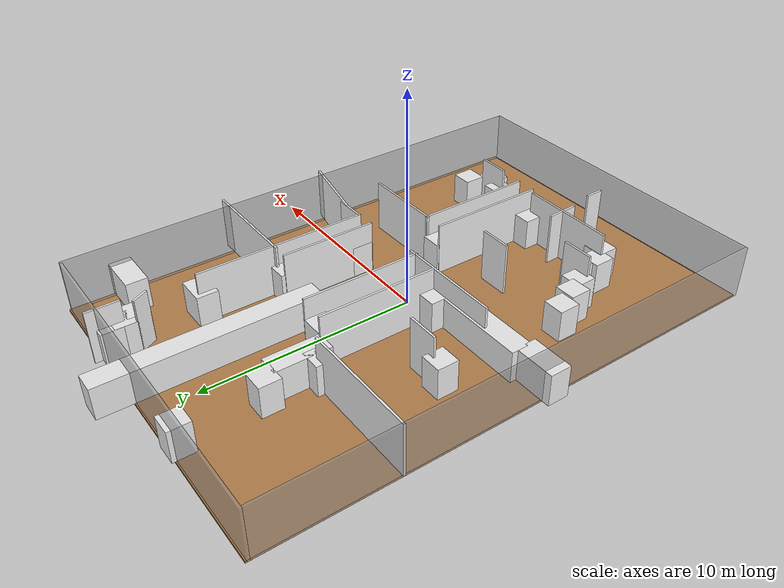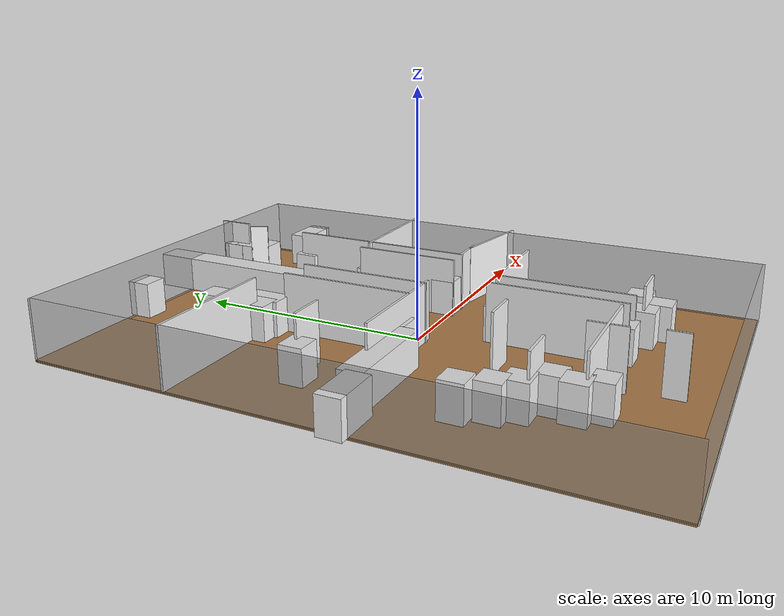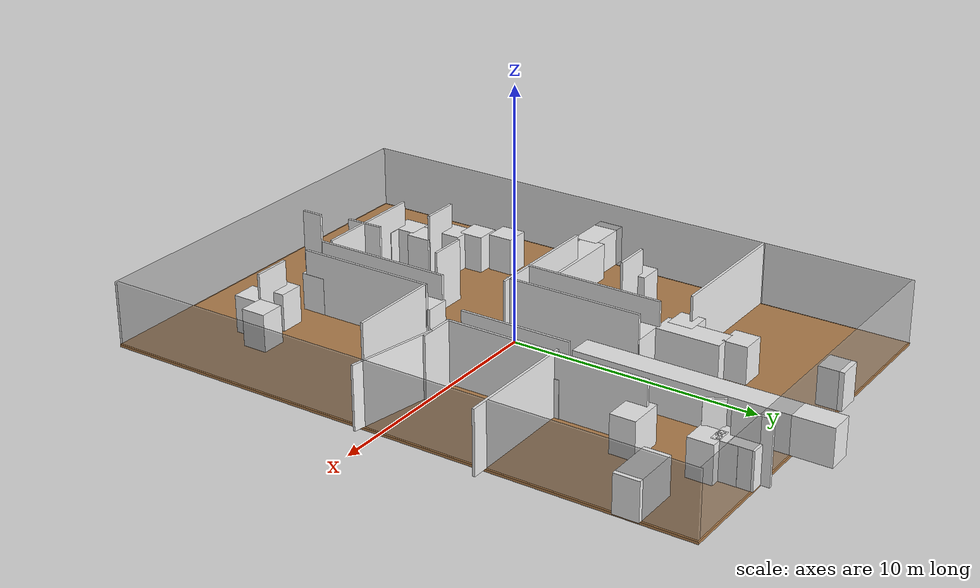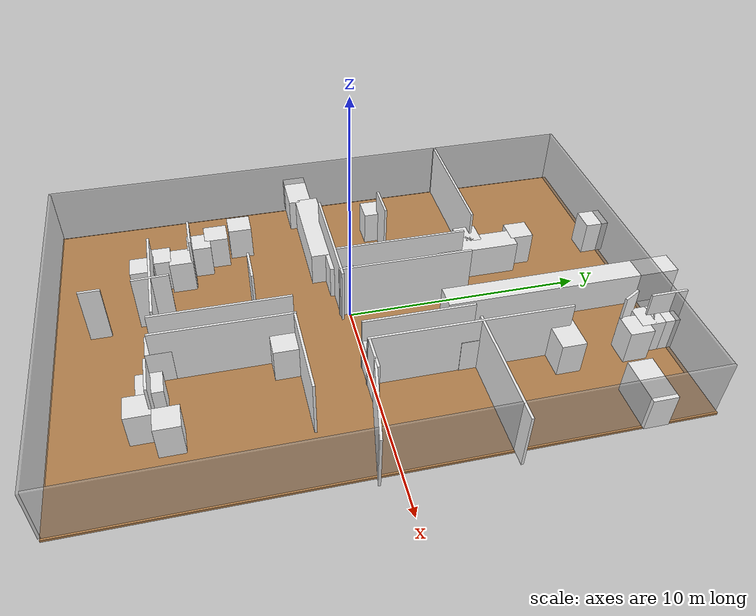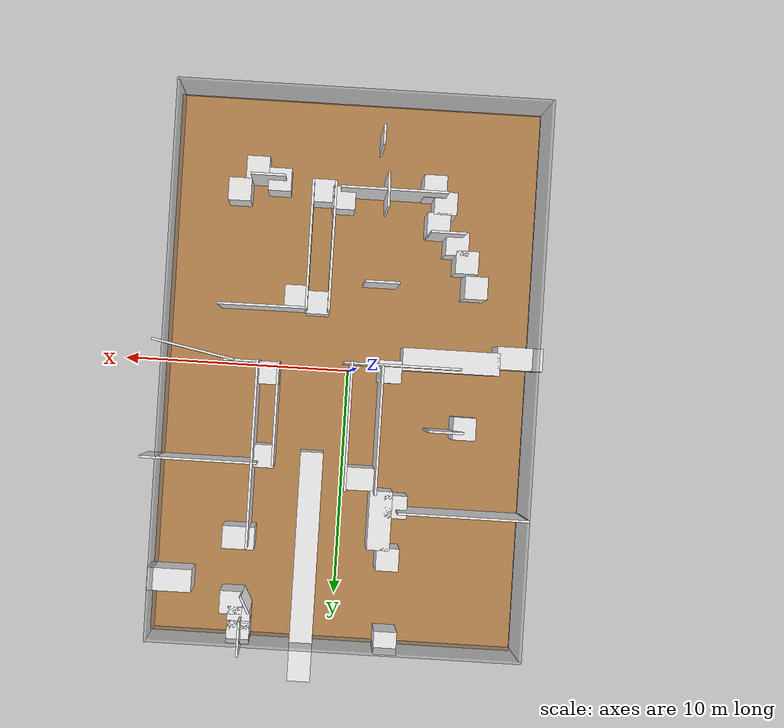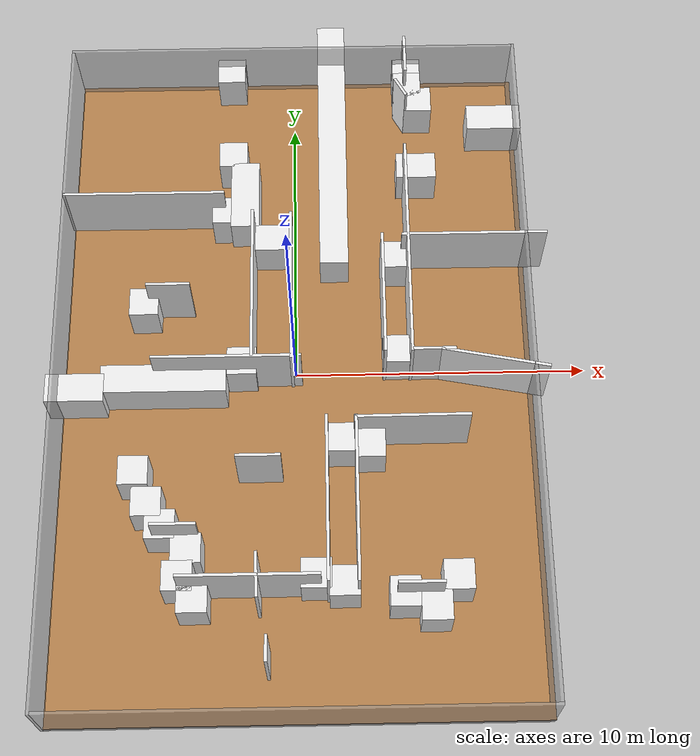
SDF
<sdf version="1.6">
 <world name="default">
  <light name="sun" type="directional">
   <pose>0 0 10 0 -0 0</pose>
   <diffuse>0.8 0.8 0.8 1</diffuse>
   <specular>0.2 0.2 0.2 1</specular>
   <attenuation>
    <range>1000</range>
    <constant>0.9</constant>
    <linear>0.01</linear>
    <quadratic>0.001</quadratic>
   </attenuation>
   <direction>-0.5 0.1 -0.9</direction>
  </light>
  <physics name="default_physics" default="0" type="ode">
   <real_time_update_rate>1000</real_time_update_rate>
   <max_step_size>0.001</max_step_size>
   <real_time_factor>1</real_time_factor>
   <ode>
    <solver>
     <type>quick</type>
     <iters>150</iters>
     <precon_iters>0</precon_iters>
     <sor>1.4</sor>
     <use_dynamic_moi_rescaling>1</use_dynamic_moi_rescaling>
    </solver>
    <constraints>
     <cfm>1e-05</cfm>
     <erp>0.2</erp>
     <contact_max_correcting_vel>2000</contact_max_correcting_vel>
     <contact_surface_layer>0.01</contact_surface_layer>
    </constraints>
   </ode>
  </physics>
  <model name="box_1">
   <pose>0.05 -12.05 1.25 0 -0 0</pose>
   <static>1</static>
   <link name="link">
    <collision name="collision"><geometry><box><size>16.1 0.1 2.5</size></box></geometry></collision>
    <visual name="visual">
     <geometry><box><size>16.1 0.1 2.5</size></box></geometry>
     <material>
      <script><name>Gazebo/GreyTransparent</name><uri>file://media/materials/scripts/gazebo.material</uri></script>
     </material>
    </visual>
   </link>
  </model>
  <model name="box_2">
   <pose>8.05 0.05 1.25 0 -0 0</pose>
   <static>1</static>
   <link name="link">
    <collision name="collision"><geometry><box><size>0.1 24.1 2.5</size></box></geometry></collision>
    <visual name="visual">
     <geometry><box><size>0.1 24.1 2.5</size></box></geometry>
     <material>
      <script><name>Gazebo/GreyTransparent</name><uri>file://media/materials/scripts/gazebo.material</uri></script>
     </material>
    </visual>
   </link>
  </model>
  <model name="box_3">
   <pose>-0.05 12.05 1.25 0 -0 0</pose>
   <static>1</static>
   <link name="link">
    <collision name="collision"><geometry><box><size>16.1 0.1 2.5</size></box></geometry></collision>
    <visual name="visual">
     <geometry><box><size>16.1 0.1 2.5</size></box></geometry>
     <material>
      <script><name>Gazebo/GreyTransparent</name><uri>file://media/materials/scripts/gazebo.material</uri></script>
     </material>
    </visual>
   </link>
  </model>
  <model name="box_4">
   <pose>-8.05 -0.05 1.25 0 -0 0</pose>
   <static>1</static>
   <link name="link">
    <collision name="collision"><geometry><box><size>0.1 24.1 2.5</size></box></geometry></collision>
    <visual name="visual">
     <geometry><box><size>0.1 24.1 2.5</size></box></geometry>
     <material>
      <script><name>Gazebo/GreyTransparent</name><uri>file://media/materials/scripts/gazebo.material</uri></script>
     </material>
    </visual>
   </link>
  </model>
  <model name="box_5">
   <pose>0.075723 0.05653 -0.05 0 -0 0</pose>
   <static>1</static>
   <link name="link">
    <collision name="collision"><geometry><box><size>16.2 24.2 0.1</size></box></geometry></collision>
    <visual name="visual">
     <geometry><box><size>16.2 24.2 0.1</size></box></geometry>
     <material>
      <script><name>Gazebo/WoodFloor</name><uri>file://media/materials/scripts/gazebo.material</uri></script>
     </material>
    </visual>
   </link>
  </model>
  <gravity>0 0 -9.8066</gravity>
  <magnetic_field>6e-06 2.3e-05 -4.2e-05</magnetic_field>
  <atmosphere type="adiabatic"/>
  <scene><ambient>0.4 0.4 0.4 1</ambient><background>0.7 0.7 0.7 1</background><shadows>1</shadows></scene>
  <spherical_coordinates>
   <surface_model>EARTH_WGS84</surface_model>
   <latitude_deg>0</latitude_deg>
   <longitude_deg>0</longitude_deg>
   <elevation>0</elevation>
   <heading_deg>0</heading_deg>
  </spherical_coordinates>
  <model name="box_8_clone">
   <pose>6.73576 -0.524414 1.25 0 0 -0.191358</pose>
   <static>1</static>
   <link name="link">
    <collision name="collision"><geometry><box><size>3.67087 0.1 2.5</size></box></geometry></collision>
    <visual name="visual">
     <geometry><box><size>3.67087 0.1 2.5</size></box></geometry>
     <material>
      <script><name>Gazebo/White</name><uri>file://media/materials/scripts/gazebo.material</uri></script>
     </material>
    </visual>
   </link>
  </model>
  <model name="box_9_clone_clone_0">
   <pose>-3.31581 -8.28424 0.75 0 -0 0</pose>
   <static>1</static>
   <link name="link">
    <collision name="collision"><geometry><box><size>1 1 1.5</size></box></geometry></collision>
    <visual name="visual">
     <geometry><box><size>1 1 1.5</size></box></geometry>
     <material>
      <script><name>Gazebo/White</name><uri>file://media/materials/scripts/gazebo.material</uri></script>
     </material>
    </visual>
   </link>
  </model>
  <model name="box_9_clone_clone_1">
   <pose>-3.8133 -7.56359 0.75 0 -0 0</pose>
   <static>1</static>
   <link name="link">
    <collision name="collision"><geometry><box><size>1 1 1.5</size></box></geometry></collision>
    <visual name="visual">
     <geometry><box><size>1 1 1.5</size></box></geometry>
     <material>
      <script><name>Gazebo/White</name><uri>file://media/materials/scripts/gazebo.material</uri></script>
     </material>
    </visual>
   </link>
  </model>
  <model name="box_9_clone_clone_2">
   <pose>-3.5544 -6.64819 0.75 0 -0 0</pose>
   <static>1</static>
   <link name="link">
    <collision name="collision"><geometry><box><size>1 1 1.5</size></box></geometry></collision>
    <visual name="visual">
     <geometry><box><size>1 1 1.5</size></box></geometry>
     <material>
      <script><name>Gazebo/White</name><uri>file://media/materials/scripts/gazebo.material</uri></script>
     </material>
    </visual>
   </link>
  </model>
  <model name="box_9_clone_clone_3">
   <pose>4.47982 -8.64867 0.75 0 -0 0</pose>
   <static>1</static>
   <link name="link">
    <collision name="collision"><geometry><box><size>1 1 1.5</size></box></geometry></collision>
    <visual name="visual">
     <geometry><box><size>1 1 1.5</size></box></geometry>
     <material>
      <script><name>Gazebo/White</name><uri>file://media/materials/scripts/gazebo.material</uri></script>
     </material>
    </visual>
   </link>
  </model>
  <model name="box_9_clone_clone_4">
   <pose>5.22128 -7.66224 0.75 0 -0 0</pose>
   <static>1</static>
   <link name="link">
    <collision name="collision"><geometry><box><size>1 1 1.5</size></box></geometry></collision>
    <visual name="visual">
     <geometry><box><size>1 1 1.5</size></box></geometry>
     <material>
      <script><name>Gazebo/White</name><uri>file://media/materials/scripts/gazebo.material</uri></script>
     </material>
    </visual>
   </link>
  </model>
  <model name="box_9_clone_clone_7">
   <pose>-2.40815 5.82285 0.75 0 -0 0</pose>
   <static>1</static>
   <link name="link">
    <collision name="collision"><geometry><box><size>1 1 1.5</size></box></geometry></collision>
    <visual name="visual">
     <geometry><box><size>1 1 1.5</size></box></geometry>
     <material>
      <script><name>Gazebo/White</name><uri>file://media/materials/scripts/gazebo.material</uri></script>
     </material>
    </visual>
   </link>
  </model>
  <model name="box_9_clone_clone_9">
   <pose>-2.19565 8.14572 0.75 0 -0 0</pose>
   <static>1</static>
   <link name="link">
    <collision name="collision"><geometry><box><size>1 1 1.5</size></box></geometry></collision>
    <visual name="visual">
     <geometry><box><size>1 1 1.5</size></box></geometry>
     <material>
      <script><name>Gazebo/White</name><uri>file://media/materials/scripts/gazebo.material</uri></script>
     </material>
    </visual>
   </link>
  </model>
  <model name="box_8_clone_clone_13_clone_clone_clone_clone_0">
   <pose>3.88443 -2.57138 1.25 0 -0 0.005723</pose>
   <static>1</static>
   <link name="link">
    <collision name="collision"><geometry><box><size>3.86211 0.1 2.5</size></box></geometry></collision>
    <visual name="visual">
     <geometry><box><size>3.86211 0.1 2.5</size></box></geometry>
     <material>
      <script><name>Gazebo/White</name><uri>file://media/materials/scripts/gazebo.material</uri></script>
     </material>
    </visual>
   </link>
  </model>
  <model name="box_8_clone_clone_11_clone">
   <pose>-1.1954 -3.87817 1.25 0 -0 0</pose>
   <static>1</static>
   <link name="link">
    <collision name="collision"><geometry><box><size>1.5 0.1 2.5</size></box></geometry></collision>
    <visual name="visual">
     <geometry><box><size>1.5 0.1 2.5</size></box></geometry>
     <material>
      <script><name>Gazebo/White</name><uri>file://media/materials/scripts/gazebo.material</uri></script>
     </material>
    </visual>
   </link>
  </model>
  <model name="box_8_clone_clone_4_clone_2">
   <pose>-4.30694 2.39293 1.25 0 -0 0</pose>
   <static>1</static>
   <link name="link">
    <collision name="collision"><geometry><box><size>1.5 0.1 2.5</size></box></geometry></collision>
    <visual name="visual">
     <geometry><box><size>1.5 0.1 2.5</size></box></geometry>
     <material>
      <script><name>Gazebo/White</name><uri>file://media/materials/scripts/gazebo.material</uri></script>
     </material>
    </visual>
   </link>
  </model>
  <model name="box_9_clone_clone_7_clone">
   <pose>-5.21616 2.23106 0.75 0 -0 0</pose>
   <static>1</static>
   <link name="link">
    <collision name="collision"><geometry><box><size>1 1 1.5</size></box></geometry></collision>
    <visual name="visual">
     <geometry><box><size>1 1 1.5</size></box></geometry>
     <material>
      <script><name>Gazebo/White</name><uri>file://media/materials/scripts/gazebo.material</uri></script>
     </material>
    </visual>
   </link>
  </model>
  <model name="box_9_clone_clone_7_clone_clone">
   <pose>-7.45444 -0.967757 0.75 0 -0 0</pose>
   <static>1</static>
   <link name="link">
    <collision name="collision"><geometry><box><size>1.9888 1 1.5</size></box></geometry></collision>
    <visual name="visual">
     <geometry><box><size>1.9888 1 1.5</size></box></geometry>
     <material>
      <script><name>Gazebo/White</name><uri>file://media/materials/scripts/gazebo.material</uri></script>
     </material>
    </visual>
   </link>
  </model>
  <model name="box_9_clone_clone_7_clone_clone_3">
   <pose>-5.3619 -3.95424 0.75 0 -0 0</pose>
   <static>1</static>
   <link name="link">
    <collision name="collision"><geometry><box><size>1 1 1.5</size></box></geometry></collision>
    <visual name="visual">
     <geometry><box><size>1 1 1.5</size></box></geometry>
     <material>
      <script><name>Gazebo/White</name><uri>file://media/materials/scripts/gazebo.material</uri></script>
     </material>
    </visual>
   </link>
  </model>
  <model name="box_9_clone_clone_7_clone_clone_4">
   <pose>-4.89443 -5.04481 0.75 0 -0 0</pose>
   <static>1</static>
   <link name="link">
    <collision name="collision"><geometry><box><size>1 1 1.5</size></box></geometry></collision>
    <visual name="visual">
     <geometry><box><size>1 1 1.5</size></box></geometry>
     <material>
      <script><name>Gazebo/White</name><uri>file://media/materials/scripts/gazebo.material</uri></script>
     </material>
    </visual>
   </link>
  </model>
  <model name="box_9_clone_clone_7_clone_clone_5">
   <pose>-4.42171 -5.82067 0.75 0 -0 0</pose>
   <static>1</static>
   <link name="link">
    <collision name="collision"><geometry><box><size>1 1 1.5</size></box></geometry></collision>
    <visual name="visual">
     <geometry><box><size>1 1 1.5</size></box></geometry>
     <material>
      <script><name>Gazebo/White</name><uri>file://media/materials/scripts/gazebo.material</uri></script>
     </material>
    </visual>
   </link>
  </model>
  <model name="box_8_clone_clone_4_clone_2_clone">
   <pose>-3.89284 -6.16269 1.25 0 -0 0</pose>
   <static>1</static>
   <link name="link">
    <collision name="collision"><geometry><box><size>1.5 0.1 2.5</size></box></geometry></collision>
    <visual name="visual">
     <geometry><box><size>1.5 0.1 2.5</size></box></geometry>
     <material>
      <script><name>Gazebo/White</name><uri>file://media/materials/scripts/gazebo.material</uri></script>
     </material>
    </visual>
   </link>
  </model>
  <model name="box_8_clone_clone_4_clone_0_clone">
   <pose>3.96979 -8.18121 1.25 0 -0 0</pose>
   <static>1</static>
   <link name="link">
    <collision name="collision"><geometry><box><size>1.5 0.1 2.5</size></box></geometry></collision>
    <visual name="visual">
     <geometry><box><size>1.5 0.1 2.5</size></box></geometry>
     <material>
      <script><name>Gazebo/White</name><uri>file://media/materials/scripts/gazebo.material</uri></script>
     </material>
    </visual>
   </link>
  </model>
  <model name="box_8_clone_clone_4_clone_0_clone_1">
   <pose>-1.22633 -7.84729 1.25 0 -0 1.59943</pose>
   <static>1</static>
   <link name="link">
    <collision name="collision"><geometry><box><size>1.5 0.1 2.5</size></box></geometry></collision>
    <visual name="visual">
     <geometry><box><size>1.5 0.1 2.5</size></box></geometry>
     <material>
      <script><name>Gazebo/White</name><uri>file://media/materials/scripts/gazebo.material</uri></script>
     </material>
    </visual>
   </link>
  </model>
  <model name="box_8_clone_clone_4_clone_0_clone_2">
   <pose>-1.48947 -7.86091 1.25 0 -0 0</pose>
   <static>1</static>
   <link name="link">
    <collision name="collision"><geometry><box><size>4.61418 0.1 2.5</size></box></geometry></collision>
    <visual name="visual">
     <geometry><box><size>4.61418 0.1 2.5</size></box></geometry>
     <material>
      <script><name>Gazebo/White</name><uri>file://media/materials/scripts/gazebo.material</uri></script>
     </material>
    </visual>
   </link>
  </model>
  <model name="box_9_clone_clone_5_clone_2_clone_0">
   <pose>4.37795 7.57531 0.75 0 -0 0</pose>
   <static>1</static>
   <link name="link">
    <collision name="collision"><geometry><box><size>1.40826 1 1.5</size></box></geometry></collision>
    <visual name="visual">
     <geometry><box><size>1.40826 1 1.5</size></box></geometry>
     <material>
      <script><name>Gazebo/White</name><uri>file://media/materials/scripts/gazebo.material</uri></script>
     </material>
    </visual>
   </link>
  </model>
  <model name="box_9_clone_clone_5_clone_2_clone_0_clone">
   <pose>0.652057 -7.5435 0.75 0 -0 0</pose>
   <static>1</static>
   <link name="link">
    <collision name="collision"><geometry><box><size>1 1 1.5</size></box></geometry></collision>
    <visual name="visual">
     <geometry><box><size>1 1 1.5</size></box></geometry>
     <material>
      <script><name>Gazebo/White</name><uri>file://media/materials/scripts/gazebo.material</uri></script>
     </material>
    </visual>
   </link>
  </model>
  <model name="box_9_clone_clone_5_clone_2_clone_0_clone_0">
   <pose>3.49636 -8.18539 0.75 0 -0 0</pose>
   <static>1</static>
   <link name="link">
    <collision name="collision"><geometry><box><size>1 1 1.5</size></box></geometry></collision>
    <visual name="visual">
     <geometry><box><size>1 1 1.5</size></box></geometry>
     <material>
      <script><name>Gazebo/White</name><uri>file://media/materials/scripts/gazebo.material</uri></script>
     </material>
    </visual>
   </link>
  </model>
  <model name="box_6_clone_clone_4_clone">
   <pose>4.07842 11.7768 1.25 0 -0 0</pose>
   <static>1</static>
   <link name="link">
    <collision name="collision"><geometry><box><size>0.1 1.5 2.5</size></box></geometry></collision>
    <visual name="visual">
     <geometry><box><size>0.1 1.5 2.5</size></box></geometry>
     <material>
      <script><name>Gazebo/White</name><uri>file://media/materials/scripts/gazebo.material</uri></script>
     </material>
    </visual>
   </link>
  </model>
  <model name="box_9_clone_clone_5_clone_2_clone_0_clone_1">
   <pose>4.52385 10.422 0.75 0 -0 0</pose>
   <static>1</static>
   <link name="link">
    <collision name="collision"><geometry><box><size>1 1 1.5</size></box></geometry></collision>
    <visual name="visual">
     <geometry><box><size>1 1 1.5</size></box></geometry>
     <material>
      <script><name>Gazebo/White</name><uri>file://media/materials/scripts/gazebo.material</uri></script>
     </material>
    </visual>
   </link>
  </model>
  <model name="box_9_clone_clone_5_clone_2_clone_0_clone_1_clone">
   <pose>4.15601 11.692 0.75 0 -0 0</pose>
   <static>1</static>
   <link name="link">
    <collision name="collision"><geometry><box><size>1 1 1.5</size></box></geometry></collision>
    <visual name="visual">
     <geometry><box><size>1 1 1.5</size></box></geometry>
     <material>
      <script><name>Gazebo/White</name><uri>file://media/materials/scripts/gazebo.material</uri></script>
     </material>
    </visual>
   </link>
  </model>
  <model name="box_9_clone_clone_5_clone_2_clone_0_clone_1_clone_0">
   <pose>4.16263 11.0885 0.75 0 -0 0</pose>
   <static>1</static>
   <link name="link">
    <collision name="collision"><geometry><box><size>1 1 1.5</size></box></geometry></collision>
    <visual name="visual">
     <geometry><box><size>1 1 1.5</size></box></geometry>
     <material>
      <script><name>Gazebo/White</name><uri>file://media/materials/scripts/gazebo.material</uri></script>
     </material>
    </visual>
   </link>
  </model>
  <model name="box_9_clone_clone_7_clone_clone_clone">
   <pose>-4.46411 -0.673379 0.75 0 -0 0</pose>
   <static>1</static>
   <link name="link">
    <collision name="collision"><geometry><box><size>4.25949 1 1.5</size></box></geometry></collision>
    <visual name="visual">
     <geometry><box><size>4.25949 1 1.5</size></box></geometry>
     <material>
      <script><name>Gazebo/White</name><uri>file://media/materials/scripts/gazebo.material</uri></script>
     </material>
    </visual>
   </link>
  </model>
  <model name="box_8_clone_clone_3_clone">
   <pose>6.25131 4.20674 1.25 0 -0 0</pose>
   <static>1</static>
   <link name="link">
    <collision name="collision"><geometry><box><size>5.04273 0.1 2.5</size></box></geometry></collision>
    <visual name="visual">
     <geometry><box><size>5.04273 0.1 2.5</size></box></geometry>
     <material>
      <script><name>Gazebo/White</name><uri>file://media/materials/scripts/gazebo.material</uri></script>
     </material>
    </visual>
   </link>
  </model>
  <model name="box_9_clone_clone_5_clone_2_clone_clone_clone">
   <pose>7.28757 9.59837 0.75 0 -0 0</pose>
   <static>1</static>
   <link name="link">
    <collision name="collision"><geometry><box><size>1.95173 1 1.5</size></box></geometry></collision>
    <visual name="visual">
     <geometry><box><size>1.95173 1 1.5</size></box></geometry>
     <material>
      <script><name>Gazebo/White</name><uri>file://media/materials/scripts/gazebo.material</uri></script>
     </material>
    </visual>
   </link>
  </model>
  <model name="box_9_clone_clone_7_clone_0">
   <pose>1.37825 8.66257 0.75 0 -0 0</pose>
   <static>1</static>
   <link name="link">
    <collision name="collision"><geometry><box><size>1 10.045 1.5</size></box></geometry></collision>
    <visual name="visual">
     <geometry><box><size>1 10.045 1.5</size></box></geometry>
     <material>
      <script><name>Gazebo/White</name><uri>file://media/materials/scripts/gazebo.material</uri></script>
     </material>
    </visual>
   </link>
  </model>
  <model name="box_8_clone_clone_3_clone_clone">
   <pose>-5.25901 5.98168 1.25 0 -0 0</pose>
   <static>1</static>
   <link name="link">
    <collision name="collision"><geometry><box><size>5.64962 0.1 2.5</size></box></geometry></collision>
    <visual name="visual">
     <geometry><box><size>5.64962 0.1 2.5</size></box></geometry>
     <material>
      <script><name>Gazebo/White</name><uri>file://media/materials/scripts/gazebo.material</uri></script>
     </material>
    </visual>
   </link>
  </model>
  <model name="box_9_clone_clone_9_clone">
   <pose>-2.30467 11.7929 0.75 0 -0 0</pose>
   <static>1</static>
   <link name="link">
    <collision name="collision"><geometry><box><size>1 1 1.5</size></box></geometry></collision>
    <visual name="visual">
     <geometry><box><size>1 1 1.5</size></box></geometry>
     <material>
      <script><name>Gazebo/White</name><uri>file://media/materials/scripts/gazebo.material</uri></script>
     </material>
    </visual>
   </link>
  </model>
  <model name="box_9_clone_clone_7_clone_1">
   <pose>-1.75575 6.46111 0.75 0 -0 0</pose>
   <static>1</static>
   <link name="link">
    <collision name="collision"><geometry><box><size>1 2.59504 1.5</size></box></geometry></collision>
    <visual name="visual">
     <geometry><box><size>1 2.59504 1.5</size></box></geometry>
     <material>
      <script><name>Gazebo/White</name><uri>file://media/materials/scripts/gazebo.material</uri></script>
     </material>
    </visual>
   </link>
  </model>
  <model name="box_6_clone_clone_3_clone_clone_clone">
   <pose>-1.43846 2.46186 1.25 0 -0 0</pose>
   <static>1</static>
   <link name="link">
    <collision name="collision"><geometry><box><size>0.1 5.60332 2.5</size></box></geometry></collision>
    <visual name="visual">
     <geometry><box><size>0.1 5.60332 2.5</size></box></geometry>
     <material>
      <script><name>Gazebo/White</name><uri>file://media/materials/scripts/gazebo.material</uri></script>
     </material>
    </visual>
   </link>
  </model>
  <model name="box_6_clone_clone_3_clone_clone_clone_clone">
   <pose>3.95757 3.81707 1.25 0 -0 0</pose>
   <static>1</static>
   <link name="link">
    <collision name="collision"><geometry><box><size>0.1 8.11445 2.5</size></box></geometry></collision>
    <visual name="visual">
     <geometry><box><size>0.1 8.11445 2.5</size></box></geometry>
     <material>
      <script><name>Gazebo/White</name><uri>file://media/materials/scripts/gazebo.material</uri></script>
     </material>
    </visual>
   </link>
  </model>
  <model name="box_6_clone_clone_3_clone_clone_clone_clone_0">
   <pose>2.0182 -5.31678 1.25 0 -0 0</pose>
   <static>1</static>
   <link name="link">
    <collision name="collision"><geometry><box><size>0.1 5.60332 2.5</size></box></geometry></collision>
    <visual name="visual">
     <geometry><box><size>0.1 5.60332 2.5</size></box></geometry>
     <material>
      <script><name>Gazebo/White</name><uri>file://media/materials/scripts/gazebo.material</uri></script>
     </material>
    </visual>
   </link>
  </model>
  <model name="box_6_clone_clone_3_clone_clone_clone_clone_0_clone">
   <pose>1.04356 -5.29976 1.25 0 -0 0</pose>
   <static>1</static>
   <link name="link">
    <collision name="collision"><geometry><box><size>0.1 5.60332 2.5</size></box></geometry></collision>
    <visual name="visual">
     <geometry><box><size>0.1 5.60332 2.5</size></box></geometry>
     <material>
      <script><name>Gazebo/White</name><uri>file://media/materials/scripts/gazebo.material</uri></script>
     </material>
    </visual>
   </link>
  </model>
  <model name="box_9_clone_clone_5_clone_2_clone_0_clone_clone">
   <pose>1.51029 -2.90303 0.75 0 -0 0</pose>
   <static>1</static>
   <link name="link">
    <collision name="collision"><geometry><box><size>1 1 1.5</size></box></geometry></collision>
    <visual name="visual">
     <geometry><box><size>1 1 1.5</size></box></geometry>
     <material>
      <script><name>Gazebo/White</name><uri>file://media/materials/scripts/gazebo.material</uri></script>
     </material>
    </visual>
   </link>
  </model>
  <model name="box_8_clone_clone">
   <pose>4.67136 -0.169302 1.25 0 -0 0</pose>
   <static>1</static>
   <link name="link">
    <collision name="collision"><geometry><box><size>1.5 0.1 2.5</size></box></geometry></collision>
    <visual name="visual">
     <geometry><box><size>1.5 0.1 2.5</size></box></geometry>
     <material>
      <script><name>Gazebo/White</name><uri>file://media/materials/scripts/gazebo.material</uri></script>
     </material>
    </visual>
   </link>
  </model>
  <model name="box_9_clone_clone_7_clone_clone_0">
   <pose>-1.82358 -0.068042 0.75 0 -0 0</pose>
   <static>1</static>
   <link name="link">
    <collision name="collision"><geometry><box><size>1 1 1.5</size></box></geometry></collision>
    <visual name="visual">
     <geometry><box><size>1 1 1.5</size></box></geometry>
     <material>
      <script><name>Gazebo/White</name><uri>file://media/materials/scripts/gazebo.material</uri></script>
     </material>
    </visual>
   </link>
  </model>
  <model name="box_9_clone_clone_5_clone_2_clone_0_clone_0_clone">
   <pose>1.56966 -7.808 0.75 0 -0 0</pose>
   <static>1</static>
   <link name="link">
    <collision name="collision"><geometry><box><size>1 1 1.5</size></box></geometry></collision>
    <visual name="visual">
     <geometry><box><size>1 1 1.5</size></box></geometry>
     <material>
      <script><name>Gazebo/White</name><uri>file://media/materials/scripts/gazebo.material</uri></script>
     </material>
    </visual>
   </link>
  </model>
  <model name="box_6_clone_clone_3_clone_clone_clone_clone_clone_clone">
   <pose>3.05375 2.01083 1.25 0 -0 0</pose>
   <static>1</static>
   <link name="link">
    <collision name="collision"><geometry><box><size>0.1 4.48724 2.5</size></box></geometry></collision>
    <visual name="visual">
     <geometry><box><size>0.1 4.48724 2.5</size></box></geometry>
     <material>
      <script><name>Gazebo/White</name><uri>file://media/materials/scripts/gazebo.material</uri></script>
     </material>
    </visual>
   </link>
  </model>
  <model name="box_9_clone_clone_5_clone_2_clone_clone_clone_0_clone">
   <pose>3.53034 3.94247 0.75 0 -0 0</pose>
   <static>1</static>
   <link name="link">
    <collision name="collision"><geometry><box><size>1 1 1.5</size></box></geometry></collision>
    <visual name="visual">
     <geometry><box><size>1 1 1.5</size></box></geometry>
     <material>
      <script><name>Gazebo/White</name><uri>file://media/materials/scripts/gazebo.material</uri></script>
     </material>
    </visual>
   </link>
  </model>
  <model name="box_9_clone_clone_5_clone_2_clone_clone_clone_0_clone_clone">
   <pose>3.50283 0.292409 0.75 0 -0 0</pose>
   <static>1</static>
   <link name="link">
    <collision name="collision"><geometry><box><size>1 1 1.5</size></box></geometry></collision>
    <visual name="visual">
     <geometry><box><size>1 1 1.5</size></box></geometry>
     <material>
      <script><name>Gazebo/White</name><uri>file://media/materials/scripts/gazebo.material</uri></script>
     </material>
    </visual>
   </link>
  </model>
  <model name="box_6_clone_clone_3_clone_clone_clone_clone_1">
   <pose>-0.107821 2.36934 1.25 0 -0 0.001144</pose>
   <static>1</static>
   <link name="link">
    <collision name="collision"><geometry><box><size>0.1 5.60332 2.5</size></box></geometry></collision>
    <visual name="visual">
     <geometry><box><size>0.1 5.60332 2.5</size></box></geometry>
     <material>
      <script><name>Gazebo/White</name><uri>file://media/materials/scripts/gazebo.material</uri></script>
     </material>
    </visual>
   </link>
  </model>
  <model name="box_9_clone_clone_8_clone_0_clone">
   <pose>-0.786916 4.69142 0.75 0 -0 0</pose>
   <static>1</static>
   <link name="link">
    <collision name="collision"><geometry><box><size>1.34488 1 1.5</size></box></geometry></collision>
    <visual name="visual">
     <geometry><box><size>1.34488 1 1.5</size></box></geometry>
     <material>
      <script><name>Gazebo/White</name><uri>file://media/materials/scripts/gazebo.material</uri></script>
     </material>
    </visual>
   </link>
  </model>
  <model name="box_8_clone_clone_3_clone_clone_clone">
   <pose>-2.2916 -0.339317 1.25 0 -0 0</pose>
   <static>1</static>
   <link name="link">
    <collision name="collision"><geometry><box><size>5.03031 0.1 2.5</size></box></geometry></collision>
    <visual name="visual">
     <geometry><box><size>5.03031 0.1 2.5</size></box></geometry>
     <material>
      <script><name>Gazebo/White</name><uri>file://media/materials/scripts/gazebo.material</uri></script>
     </material>
    </visual>
   </link>
  </model>
  <audio><device>default</device></audio>
  <model name="box_8_clone_clone_11_clone_clone">
   <pose>-0.908913 -10.1906 1.25 0 -0 1.57416</pose>
   <static>1</static>
   <link name="link">
    <collision name="collision"><geometry><box><size>0.864362 0.1 2.5</size></box></geometry></collision>
    <visual name="visual">
     <geometry><box><size>0.864362 0.1 2.5</size></box></geometry>
     <material>
      <script><name>Gazebo/White</name><uri>file://media/materials/scripts/gazebo.material</uri></script>
     </material>
    </visual>
   </link>
  </model>
  <model name="box_9_clone_clone_4_clone">
   <pose>2.49217 -3.12072 0.75 0 -0 0</pose>
   <static>1</static>
   <link name="link">
    <collision name="collision"><geometry><box><size>1 1 1.5</size></box></geometry></collision>
    <visual name="visual">
     <geometry><box><size>1 1 1.5</size></box></geometry>
     <material>
      <script><name>Gazebo/White</name><uri>file://media/materials/scripts/gazebo.material</uri></script>
     </material>
    </visual>
   </link>
  </model>
  <model name="box_8_clone_clone_11_clone_clone_0">
   <pose>3.88226 10.2964 1.25 0 0 -1.07148</pose>
   <static>1</static>
   <link name="link">
    <collision name="collision"><geometry><box><size>0.79966 0.1 2.5</size></box></geometry></collision>
    <visual name="visual">
     <geometry><box><size>0.79966 0.1 2.5</size></box></geometry>
     <material>
      <script><name>Gazebo/White</name><uri>file://media/materials/scripts/gazebo.material</uri></script>
     </material>
    </visual>
   </link>
  </model>
 </world>
</sdf>
